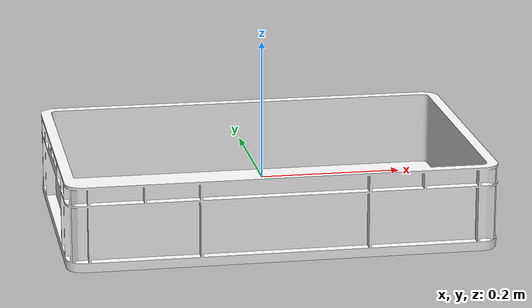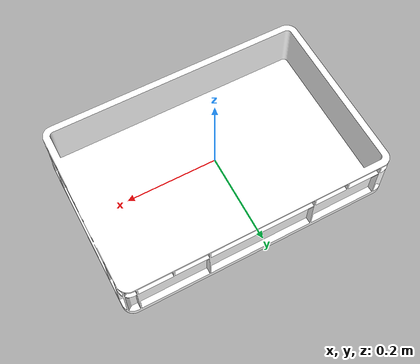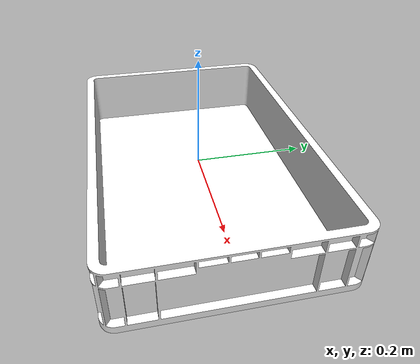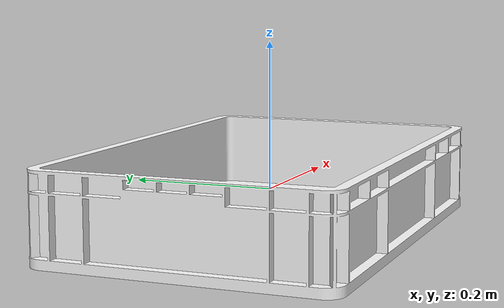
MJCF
<mujoco>
  <compiler angle="radian" assetdir="assets" autolimits="true"/>

  <asset>

    <!-- Textures -->
    <texture type="2d" colorspace="sRGB" name="V_BlueLZ" file="V_BlueLZ_5.png"/>

    <!-- Materials -->
    <material name="Material" rgba="1 1 1 1" reflectance="0.0" metallic="0.0" roughness="1">
      <layer texture="V_BlueLZ" role="rgb"/>
    </material>

    <!-- Visual meshes -->
    <mesh class="visual" name="V_BlueLZ" file="V_BlueLZ.obj"/>

    <!-- Collision meshes -->
  </asset>

  <default>
      <default class="visual">
        <geom type="mesh" contype="0" conaffinity="0" group="2" density="0"/>
      </default>
  </default>

  <worldbody>

    <body name="B_BlueLZ" pos="0.0 0.0 0.0" quat="1.0 0.0 0.0 0.0">
      <geom class="visual" mesh="V_BlueLZ" pos="0.0 0.0 0.0" quat="1.0 0.0 0.0 0.0" material="Material"/>
    </body>
  </worldbody>
</mujoco>
